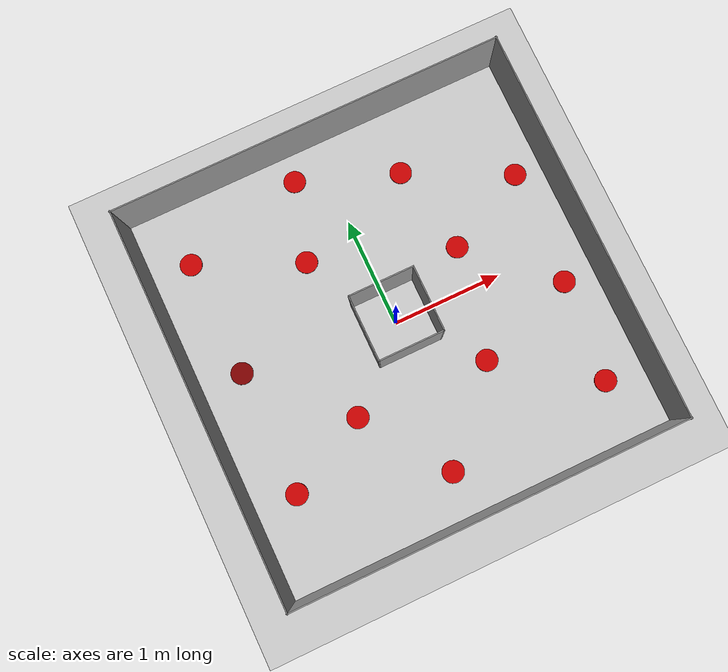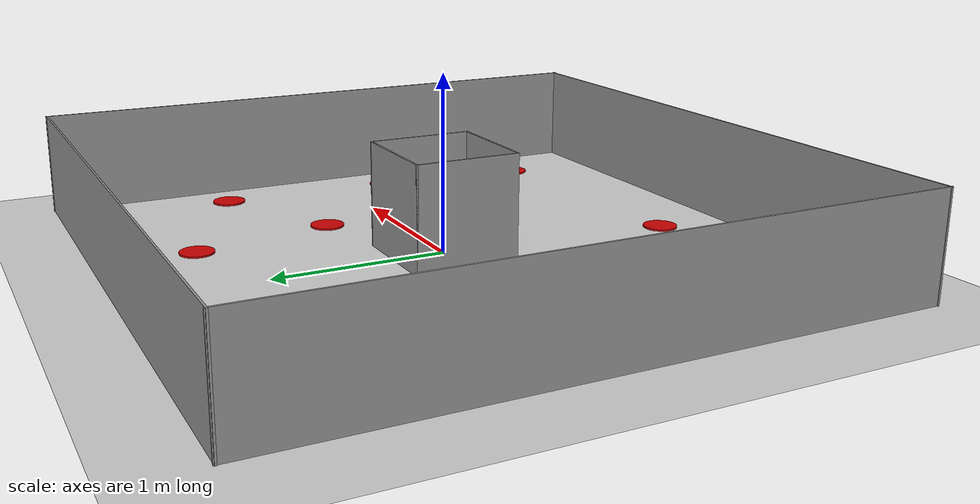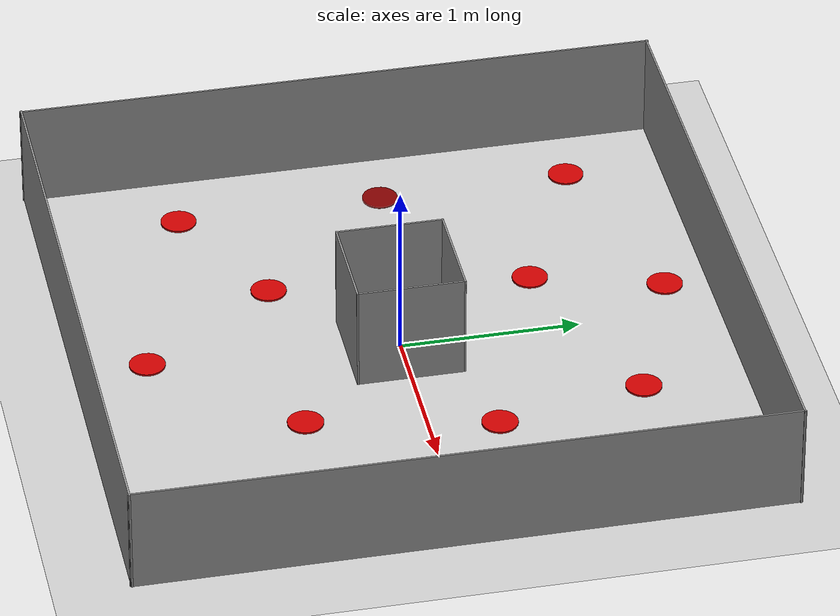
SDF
<sdf version="1.7">
 <world name="maze_world">
  <light name="sun" type="directional">
   <pose>0 0 10 0 -0 0</pose>
   <diffuse>0.8 0.8 0.8 1</diffuse>
   <specular>0.2 0.2 0.2 1</specular>
   <attenuation>
    <range>1000</range>
    <constant>0.9</constant>
    <linear>0.01</linear>
    <quadratic>0.001</quadratic>
   </attenuation>
   <direction>-0.5 0.1 -0.9</direction>
   <spot><inner_angle>0</inner_angle><outer_angle>0</outer_angle><falloff>0</falloff></spot>
  </light>
  <model name="outer_walls">
   <static>1</static>
   <link name="top_wall">
    <pose>0 1.79 0.3 0 -0 0</pose>
    <visual name="visual">
     <geometry><box><size>3.6 0.01 0.6</size></box></geometry>
     <material>
      <script><uri>file://media/materials/scripts/gazebo.material</uri><name>Gazebo/Grey</name></script>
     </material>
    </visual>
    <collision name="collision"><geometry><box><size>3.6 0.01 0.6</size></box></geometry></collision>
   </link>
   <link name="bottom_wall">
    <pose>0 -1.79 0.3 0 -0 0</pose>
    <visual name="visual">
     <geometry><box><size>3.6 0.01 0.6</size></box></geometry>
     <material>
      <script><uri>file://media/materials/scripts/gazebo.material</uri><name>Gazebo/Grey</name></script>
     </material>
    </visual>
    <collision name="collision"><geometry><box><size>3.6 0.01 0.6</size></box></geometry></collision>
   </link>
   <link name="left_wall">
    <pose>-1.79 0 0.3 0 -0 0</pose>
    <visual name="visual">
     <geometry><box><size>0.01 3.6 0.6</size></box></geometry>
     <material>
      <script><uri>file://media/materials/scripts/gazebo.material</uri><name>Gazebo/Grey</name></script>
     </material>
    </visual>
    <collision name="collision"><geometry><box><size>0.01 3.6 0.6</size></box></geometry></collision>
   </link>
   <link name="right_wall">
    <pose>1.79 0 0.3 0 -0 0</pose>
    <visual name="visual">
     <geometry><box><size>0.01 3.6 0.6</size></box></geometry>
     <material>
      <script><uri>file://media/materials/scripts/gazebo.material</uri><name>Gazebo/Grey</name></script>
     </material>
    </visual>
    <collision name="collision"><geometry><box><size>0.01 3.6 0.6</size></box></geometry></collision>
   </link>
  </model>
  <model name="inner_walls">
   <static>1</static>
   <link name="inner_top_wall">
    <pose>0 0.295 0.3 0 -0 0</pose>
    <visual name="visual">
     <geometry><box><size>0.6 0.01 0.6</size></box></geometry>
     <material>
      <script><uri>file://media/materials/scripts/gazebo.material</uri><name>Gazebo/Grey</name></script>
     </material>
    </visual>
    <collision name="collision"><geometry><box><size>0.6 0.01 0.6</size></box></geometry></collision>
   </link>
   <link name="inner_bottom_wall">
    <pose>0 -0.295 0.3 0 -0 0</pose>
    <visual name="visual">
     <geometry><box><size>0.6 0.01 0.6</size></box></geometry>
     <material>
      <script><uri>file://media/materials/scripts/gazebo.material</uri><name>Gazebo/Grey</name></script>
     </material>
    </visual>
    <collision name="collision"><geometry><box><size>0.6 0.01 0.6</size></box></geometry></collision>
   </link>
   <link name="inner_left_wall">
    <pose>-0.295 0 0.3 0 -0 0</pose>
    <visual name="visual">
     <geometry><box><size>0.01 0.6 0.6</size></box></geometry>
     <material>
      <script><uri>file://media/materials/scripts/gazebo.material</uri><name>Gazebo/Grey</name></script>
     </material>
    </visual>
    <collision name="collision"><geometry><box><size>0.01 0.6 0.6</size></box></geometry></collision>
   </link>
   <link name="inner_right_wall">
    <pose>0.295 0 0.3 0 -0 0</pose>
    <visual name="visual">
     <geometry><box><size>0.01 0.6 0.6</size></box></geometry>
     <material>
      <script><uri>file://media/materials/scripts/gazebo.material</uri><name>Gazebo/Grey</name></script>
     </material>
    </visual>
    <collision name="collision"><geometry><box><size>0.01 0.6 0.6</size></box></geometry></collision>
   </link>
  </model>
  <gravity>0 0 -9.8</gravity>
  <magnetic_field>6e-06 2.3e-05 -4.2e-05</magnetic_field>
  <atmosphere type="adiabatic"/>
  <physics type="ode">
   <max_step_size>0.001</max_step_size>
   <real_time_factor>1</real_time_factor>
   <real_time_update_rate>1000</real_time_update_rate>
  </physics>
  <scene><ambient>0.4 0.4 0.4 1</ambient><background>0.7 0.7 0.7 1</background><shadows>1</shadows></scene>
  <audio><device>default</device></audio>
  <spherical_coordinates>
   <surface_model>EARTH_WGS84</surface_model>
   <latitude_deg>0</latitude_deg>
   <longitude_deg>0</longitude_deg>
   <elevation>0</elevation>
   <heading_deg>0</heading_deg>
  </spherical_coordinates>
  <model name="pothole_clone">
   <static>1</static>
   <link name="pothole_link">
    <collision name="collision">
     <geometry><cylinder><radius>0.1</radius><length>0.01</length></cylinder></geometry>
    </collision>
    <visual name="visual">
     <geometry><cylinder><radius>0.1</radius><length>0.01</length></cylinder></geometry>
     <material><ambient>0.5 0.0 0.0 1</ambient></material>
    </visual>
   </link>
   <pose>-1.41037 0.171652 0 0 -0 0</pose>
  </model>
  <model name="ground_plane">
   <static>1</static>
   <link name="link">
    <collision name="collision">
     <geometry><plane><normal>0 0 1</normal><size>100 100</size></plane></geometry>
     <surface>
      <contact><collide_bitmask>65535</collide_bitmask></contact>
      <friction><ode><mu>100</mu><mu2>50</mu2></ode></friction>
     </surface>
    </collision>
    <visual name="visual">
     <cast_shadows>0</cast_shadows>
     <geometry><plane><normal>0 0 1</normal><size>100 100</size></plane></geometry>
     <material>
      <script><uri>file://media/materials/scripts/gazebo.material</uri><name>PR2/Grey0</name></script>
     </material>
    </visual>
   </link>
   <pose>-0.496527 0.042615 0 0 -0 0</pose>
  </model>
  <model name="pothole_clone_clone_0">
   <static>1</static>
   <link name="pothole_link">
    <collision name="collision">
     <geometry><cylinder><radius>0.1</radius><length>0.01</length></cylinder></geometry>
    </collision>
    <visual name="visual">
     <geometry><cylinder><radius>0.1</radius><length>0.01</length></cylinder></geometry>
     <material><ambient>0.8 0.0 0.0 1</ambient></material>
    </visual>
   </link>
   <pose>-0.488521 0.831224 0 0 -0 0</pose>
  </model>
  <model name="pothole_clone_clone_1">
   <static>1</static>
   <link name="pothole_link">
    <collision name="collision">
     <geometry><cylinder><radius>0.1</radius><length>0.01</length></cylinder></geometry>
    </collision>
    <visual name="visual">
     <geometry><cylinder><radius>0.1</radius><length>0.01</length></cylinder></geometry>
     <material><ambient>0.8 0.0 0.0 1</ambient></material>
    </visual>
   </link>
   <pose>-1.42798 1.24779 0 0 -0 0</pose>
  </model>
  <model name="pothole_clone_clone_2">
   <static>1</static>
   <link name="pothole_link">
    <collision name="collision">
     <geometry><cylinder><radius>0.1</radius><length>0.01</length></cylinder></geometry>
    </collision>
    <visual name="visual">
     <geometry><cylinder><radius>0.1</radius><length>0.01</length></cylinder></geometry>
     <material><ambient>0.8 0.0 0.0 1</ambient></material>
    </visual>
   </link>
   <pose>-0.280364 1.54837 0 0 -0 0</pose>
  </model>
  <model name="pothole_clone_clone_3">
   <static>1</static>
   <link name="pothole_link">
    <collision name="collision">
     <geometry><cylinder><radius>0.1</radius><length>0.01</length></cylinder></geometry>
    </collision>
    <visual name="visual">
     <geometry><cylinder><radius>0.1</radius><length>0.01</length></cylinder></geometry>
     <material><ambient>0.8 0.0 0.0 1</ambient></material>
    </visual>
   </link>
   <pose>0.618604 1.21657 0 0 -0 0</pose>
  </model>
  <model name="pothole_clone_clone_4">
   <static>1</static>
   <link name="pothole_link">
    <collision name="collision">
     <geometry><cylinder><radius>0.1</radius><length>0.01</length></cylinder></geometry>
    </collision>
    <visual name="visual">
     <geometry><cylinder><radius>0.1</radius><length>0.01</length></cylinder></geometry>
     <material><ambient>0.8 0.0 0.0 1</ambient></material>
    </visual>
   </link>
   <pose>1.54554 0.762005 0 0 -0 0</pose>
  </model>
  <model name="pothole_clone_clone_5">
   <static>1</static>
   <link name="pothole_link">
    <collision name="collision">
     <geometry><cylinder><radius>0.1</radius><length>0.01</length></cylinder></geometry>
    </collision>
    <visual name="visual">
     <geometry><cylinder><radius>0.1</radius><length>0.01</length></cylinder></geometry>
     <material><ambient>0.8 0.0 0.0 1</ambient></material>
    </visual>
   </link>
   <pose>0.783148 0.384747 0 0 -0 0</pose>
  </model>
  <model name="pothole_clone_clone_6">
   <static>1</static>
   <link name="pothole_link">
    <collision name="collision">
     <geometry><cylinder><radius>0.1</radius><length>0.01</length></cylinder></geometry>
    </collision>
    <visual name="visual">
     <geometry><cylinder><radius>0.1</radius><length>0.01</length></cylinder></geometry>
     <material><ambient>0.8 0.0 0.0 1</ambient></material>
    </visual>
   </link>
   <pose>1.50662 -0.302792 0 0 -0 0</pose>
  </model>
  <model name="pothole_clone_clone_7">
   <static>1</static>
   <link name="pothole_link">
    <collision name="collision">
     <geometry><cylinder><radius>0.1</radius><length>0.01</length></cylinder></geometry>
    </collision>
    <visual name="visual">
     <geometry><cylinder><radius>0.1</radius><length>0.01</length></cylinder></geometry>
     <material><ambient>0.8 0.0 0.0 1</ambient></material>
    </visual>
   </link>
   <pose>0.577773 -0.63853 0 0 -0 0</pose>
  </model>
  <model name="pothole_clone_clone_8">
   <static>1</static>
   <link name="pothole_link">
    <collision name="collision">
     <geometry><cylinder><radius>0.1</radius><length>0.01</length></cylinder></geometry>
    </collision>
    <visual name="visual">
     <geometry><cylinder><radius>0.1</radius><length>0.01</length></cylinder></geometry>
     <material><ambient>0.8 0.0 0.0 1</ambient></material>
    </visual>
   </link>
   <pose>1.43842 -1.24183 0 0 -0 0</pose>
  </model>
  <model name="pothole_clone_clone_9">
   <static>1</static>
   <link name="pothole_link">
    <collision name="collision">
     <geometry><cylinder><radius>0.1</radius><length>0.01</length></cylinder></geometry>
    </collision>
    <visual name="visual">
     <geometry><cylinder><radius>0.1</radius><length>0.01</length></cylinder></geometry>
     <material><ambient>0.8 0.0 0.0 1</ambient></material>
    </visual>
   </link>
   <pose>-0.108615 -1.38175 0 0 -0 0</pose>
  </model>
  <model name="pothole_clone_clone_10">
   <static>1</static>
   <link name="pothole_link">
    <collision name="collision">
     <geometry><cylinder><radius>0.1</radius><length>0.01</length></cylinder></geometry>
    </collision>
    <visual name="visual">
     <geometry><cylinder><radius>0.1</radius><length>0.01</length></cylinder></geometry>
     <material><ambient>0.8 0.0 0.0 1</ambient></material>
    </visual>
   </link>
   <pose>-0.655059 -0.608667 0 0 -0 0</pose>
  </model>
  <model name="pothole_clone_clone_11">
   <static>1</static>
   <link name="pothole_link">
    <collision name="collision">
     <geometry><cylinder><radius>0.1</radius><length>0.01</length></cylinder></geometry>
    </collision>
    <visual name="visual">
     <geometry><cylinder><radius>0.1</radius><length>0.01</length></cylinder></geometry>
     <material><ambient>0.8 0.0 0.0 1</ambient></material>
    </visual>
   </link>
   <pose>-1.40647 -0.980913 0 0 -0 0</pose>
  </model>
 </world>
</sdf>
